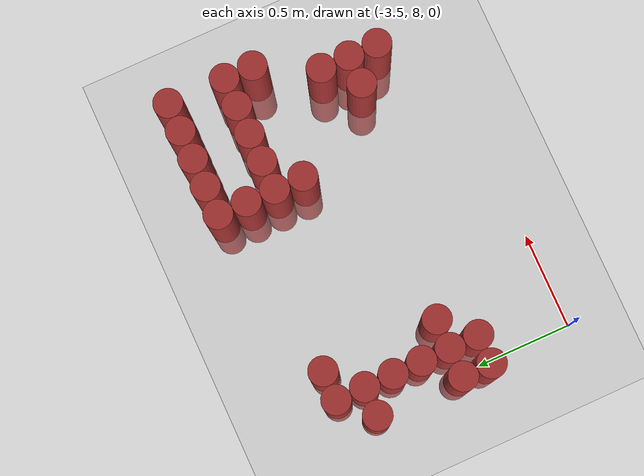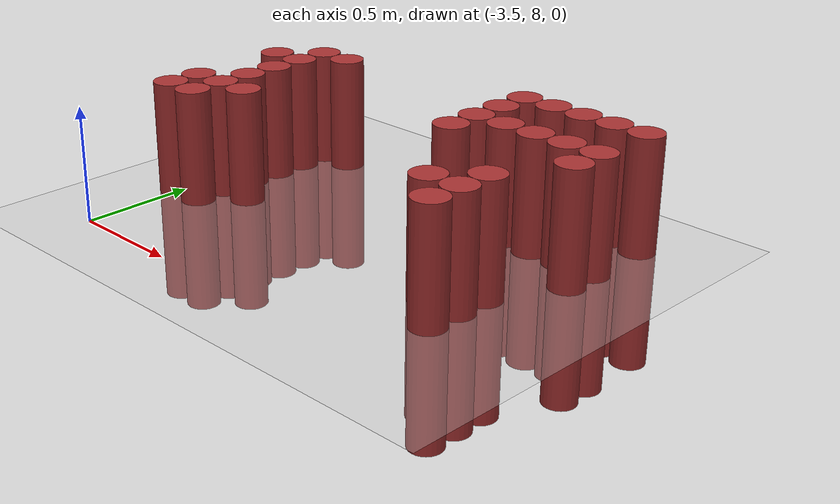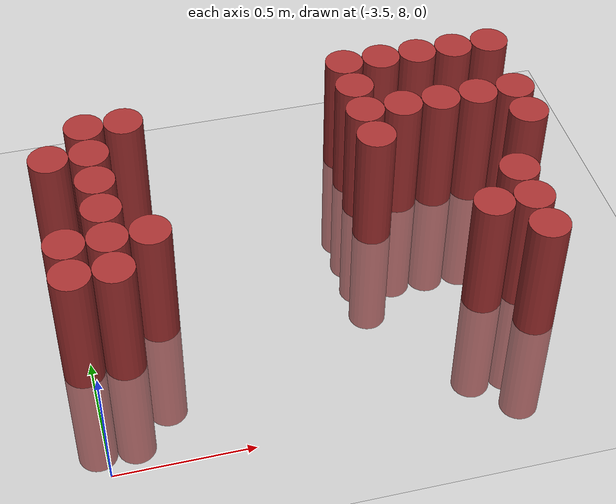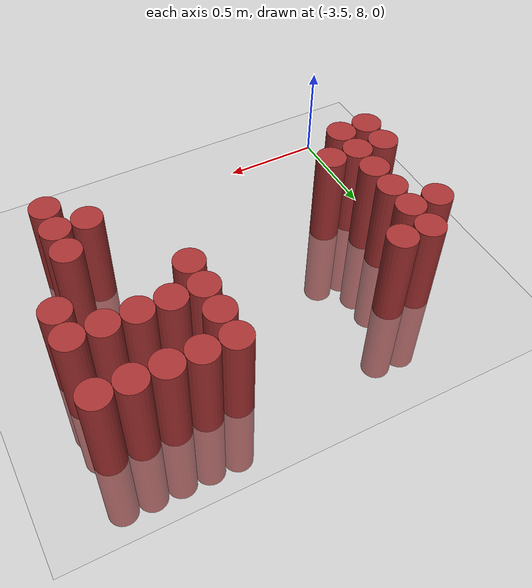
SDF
<sdf version="1.6">
 <world name="default">
  <model name="ground_plane">
   <static>1</static>
   <link name="link">
    <collision name="collision">
     <geometry><plane><normal>0 0 1</normal><size>100 100</size></plane></geometry>
     <surface><friction><ode><mu>100</mu><mu2>50</mu2></ode></friction></surface>
    </collision>
    <visual name="visual">
     <cast_shadows>0</cast_shadows>
     <geometry><plane><normal>0 0 1</normal><size>100 100</size></plane></geometry>
     <material>
      <script><uri>file://media/materials/scripts/gazebo.material</uri><name>Gazebo/Grey</name></script>
     </material>
    </visual>
   </link>
  </model>
  <model name="unit_cylinder_173">
   <static>1</static>
   <pose>-3.525000 8.475000 0.000000 0.000000 0.000000 0.000000</pose>
   <link name="link">
    <inertial>
     <mass>1</mass>
     <inertia><ixx>0.145833</ixx><ixy>0</ixy><ixz>0</ixz><iyy>0.145833</iyy><iyz>0</iyz><izz>0.125</izz></inertia>
    </inertial>
    <collision name="collision">
     <geometry><cylinder><radius>0.075000</radius><length>1</length></cylinder></geometry>
    </collision>
    <visual name="visual">
     <geometry><cylinder><radius>0.075000</radius><length>1</length></cylinder></geometry>
     <material>
      <ambient>0.648000 0.192000 0.192000 1</ambient>
      <diffuse>0.648000 0.192000 0.192000 1</diffuse>
     </material>
     <material>
      <script><name>Gazebo/Grey</name><uri>file://media/materials/scripts/gazebo.material</uri></script>
     </material>
    </visual>
   </link>
  </model>
  <model name="unit_cylinder_174">
   <static>1</static>
   <pose>-3.525000 8.625000 0.000000 0.000000 0.000000 0.000000</pose>
   <link name="link">
    <inertial>
     <mass>1</mass>
     <inertia><ixx>0.145833</ixx><ixy>0</ixy><ixz>0</ixz><iyy>0.145833</iyy><iyz>0</iyz><izz>0.125</izz></inertia>
    </inertial>
    <collision name="collision">
     <geometry><cylinder><radius>0.075000</radius><length>1</length></cylinder></geometry>
    </collision>
    <visual name="visual">
     <geometry><cylinder><radius>0.075000</radius><length>1</length></cylinder></geometry>
     <material>
      <ambient>0.648000 0.192000 0.192000 1</ambient>
      <diffuse>0.648000 0.192000 0.192000 1</diffuse>
     </material>
     <material>
      <script><name>Gazebo/Grey</name><uri>file://media/materials/scripts/gazebo.material</uri></script>
     </material>
    </visual>
   </link>
  </model>
  <model name="unit_cylinder_175">
   <static>1</static>
   <pose>-3.525000 9.075000 0.000000 0.000000 0.000000 0.000000</pose>
   <link name="link">
    <inertial>
     <mass>1</mass>
     <inertia><ixx>0.145833</ixx><ixy>0</ixy><ixz>0</ixz><iyy>0.145833</iyy><iyz>0</iyz><izz>0.125</izz></inertia>
    </inertial>
    <collision name="collision">
     <geometry><cylinder><radius>0.075000</radius><length>1</length></cylinder></geometry>
    </collision>
    <visual name="visual">
     <geometry><cylinder><radius>0.075000</radius><length>1</length></cylinder></geometry>
     <material>
      <ambient>0.648000 0.192000 0.192000 1</ambient>
      <diffuse>0.648000 0.192000 0.192000 1</diffuse>
     </material>
     <material>
      <script><name>Gazebo/Grey</name><uri>file://media/materials/scripts/gazebo.material</uri></script>
     </material>
    </visual>
   </link>
  </model>
  <model name="unit_cylinder_183">
   <static>1</static>
   <pose>-3.375000 8.475000 0.000000 0.000000 0.000000 0.000000</pose>
   <link name="link">
    <inertial>
     <mass>1</mass>
     <inertia><ixx>0.145833</ixx><ixy>0</ixy><ixz>0</ixz><iyy>0.145833</iyy><iyz>0</iyz><izz>0.125</izz></inertia>
    </inertial>
    <collision name="collision">
     <geometry><cylinder><radius>0.075000</radius><length>1</length></cylinder></geometry>
    </collision>
    <visual name="visual">
     <geometry><cylinder><radius>0.075000</radius><length>1</length></cylinder></geometry>
     <material>
      <ambient>0.648000 0.192000 0.192000 1</ambient>
      <diffuse>0.648000 0.192000 0.192000 1</diffuse>
     </material>
     <material>
      <script><name>Gazebo/Grey</name><uri>file://media/materials/scripts/gazebo.material</uri></script>
     </material>
    </visual>
   </link>
  </model>
  <model name="unit_cylinder_184">
   <static>1</static>
   <pose>-3.375000 8.625000 0.000000 0.000000 0.000000 0.000000</pose>
   <link name="link">
    <inertial>
     <mass>1</mass>
     <inertia><ixx>0.145833</ixx><ixy>0</ixy><ixz>0</ixz><iyy>0.145833</iyy><iyz>0</iyz><izz>0.125</izz></inertia>
    </inertial>
    <collision name="collision">
     <geometry><cylinder><radius>0.075000</radius><length>1</length></cylinder></geometry>
    </collision>
    <visual name="visual">
     <geometry><cylinder><radius>0.075000</radius><length>1</length></cylinder></geometry>
     <material>
      <ambient>0.648000 0.192000 0.192000 1</ambient>
      <diffuse>0.648000 0.192000 0.192000 1</diffuse>
     </material>
     <material>
      <script><name>Gazebo/Grey</name><uri>file://media/materials/scripts/gazebo.material</uri></script>
     </material>
    </visual>
   </link>
  </model>
  <model name="unit_cylinder_185">
   <static>1</static>
   <pose>-3.375000 8.775000 0.000000 0.000000 0.000000 0.000000</pose>
   <link name="link">
    <inertial>
     <mass>1</mass>
     <inertia><ixx>0.145833</ixx><ixy>0</ixy><ixz>0</ixz><iyy>0.145833</iyy><iyz>0</iyz><izz>0.125</izz></inertia>
    </inertial>
    <collision name="collision">
     <geometry><cylinder><radius>0.075000</radius><length>1</length></cylinder></geometry>
    </collision>
    <visual name="visual">
     <geometry><cylinder><radius>0.075000</radius><length>1</length></cylinder></geometry>
     <material>
      <ambient>0.648000 0.192000 0.192000 1</ambient>
      <diffuse>0.648000 0.192000 0.192000 1</diffuse>
     </material>
     <material>
      <script><name>Gazebo/Grey</name><uri>file://media/materials/scripts/gazebo.material</uri></script>
     </material>
    </visual>
   </link>
  </model>
  <model name="unit_cylinder_186">
   <static>1</static>
   <pose>-3.375000 8.925000 0.000000 0.000000 0.000000 0.000000</pose>
   <link name="link">
    <inertial>
     <mass>1</mass>
     <inertia><ixx>0.145833</ixx><ixy>0</ixy><ixz>0</ixz><iyy>0.145833</iyy><iyz>0</iyz><izz>0.125</izz></inertia>
    </inertial>
    <collision name="collision">
     <geometry><cylinder><radius>0.075000</radius><length>1</length></cylinder></geometry>
    </collision>
    <visual name="visual">
     <geometry><cylinder><radius>0.075000</radius><length>1</length></cylinder></geometry>
     <material>
      <ambient>0.648000 0.192000 0.192000 1</ambient>
      <diffuse>0.648000 0.192000 0.192000 1</diffuse>
     </material>
     <material>
      <script><name>Gazebo/Grey</name><uri>file://media/materials/scripts/gazebo.material</uri></script>
     </material>
    </visual>
   </link>
  </model>
  <model name="unit_cylinder_187">
   <static>1</static>
   <pose>-3.375000 9.075000 0.000000 0.000000 0.000000 0.000000</pose>
   <link name="link">
    <inertial>
     <mass>1</mass>
     <inertia><ixx>0.145833</ixx><ixy>0</ixy><ixz>0</ixz><iyy>0.145833</iyy><iyz>0</iyz><izz>0.125</izz></inertia>
    </inertial>
    <collision name="collision">
     <geometry><cylinder><radius>0.075000</radius><length>1</length></cylinder></geometry>
    </collision>
    <visual name="visual">
     <geometry><cylinder><radius>0.075000</radius><length>1</length></cylinder></geometry>
     <material>
      <ambient>0.648000 0.192000 0.192000 1</ambient>
      <diffuse>0.648000 0.192000 0.192000 1</diffuse>
     </material>
     <material>
      <script><name>Gazebo/Grey</name><uri>file://media/materials/scripts/gazebo.material</uri></script>
     </material>
    </visual>
   </link>
  </model>
  <model name="unit_cylinder_188">
   <static>1</static>
   <pose>-3.375000 9.225000 0.000000 0.000000 0.000000 0.000000</pose>
   <link name="link">
    <inertial>
     <mass>1</mass>
     <inertia><ixx>0.145833</ixx><ixy>0</ixy><ixz>0</ixz><iyy>0.145833</iyy><iyz>0</iyz><izz>0.125</izz></inertia>
    </inertial>
    <collision name="collision">
     <geometry><cylinder><radius>0.075000</radius><length>1</length></cylinder></geometry>
    </collision>
    <visual name="visual">
     <geometry><cylinder><radius>0.075000</radius><length>1</length></cylinder></geometry>
     <material>
      <ambient>0.648000 0.192000 0.192000 1</ambient>
      <diffuse>0.648000 0.192000 0.192000 1</diffuse>
     </material>
     <material>
      <script><name>Gazebo/Grey</name><uri>file://media/materials/scripts/gazebo.material</uri></script>
     </material>
    </visual>
   </link>
  </model>
  <model name="unit_cylinder_196">
   <static>1</static>
   <pose>-3.225000 8.625000 0.000000 0.000000 0.000000 0.000000</pose>
   <link name="link">
    <inertial>
     <mass>1</mass>
     <inertia><ixx>0.145833</ixx><ixy>0</ixy><ixz>0</ixz><iyy>0.145833</iyy><iyz>0</iyz><izz>0.125</izz></inertia>
    </inertial>
    <collision name="collision">
     <geometry><cylinder><radius>0.075000</radius><length>1</length></cylinder></geometry>
    </collision>
    <visual name="visual">
     <geometry><cylinder><radius>0.075000</radius><length>1</length></cylinder></geometry>
     <material>
      <ambient>0.648000 0.192000 0.192000 1</ambient>
      <diffuse>0.648000 0.192000 0.192000 1</diffuse>
     </material>
     <material>
      <script><name>Gazebo/Grey</name><uri>file://media/materials/scripts/gazebo.material</uri></script>
     </material>
    </visual>
   </link>
  </model>
  <model name="unit_cylinder_197">
   <static>1</static>
   <pose>-3.225000 9.225000 0.000000 0.000000 0.000000 0.000000</pose>
   <link name="link">
    <inertial>
     <mass>1</mass>
     <inertia><ixx>0.145833</ixx><ixy>0</ixy><ixz>0</ixz><iyy>0.145833</iyy><iyz>0</iyz><izz>0.125</izz></inertia>
    </inertial>
    <collision name="collision">
     <geometry><cylinder><radius>0.075000</radius><length>1</length></cylinder></geometry>
    </collision>
    <visual name="visual">
     <geometry><cylinder><radius>0.075000</radius><length>1</length></cylinder></geometry>
     <material>
      <ambient>0.648000 0.192000 0.192000 1</ambient>
      <diffuse>0.648000 0.192000 0.192000 1</diffuse>
     </material>
     <material>
      <script><name>Gazebo/Grey</name><uri>file://media/materials/scripts/gazebo.material</uri></script>
     </material>
    </visual>
   </link>
  </model>
  <model name="unit_cylinder_232">
   <static>1</static>
   <pose>-2.325000 8.925000 0.000000 0.000000 0.000000 0.000000</pose>
   <link name="link">
    <inertial>
     <mass>1</mass>
     <inertia><ixx>0.145833</ixx><ixy>0</ixy><ixz>0</ixz><iyy>0.145833</iyy><iyz>0</iyz><izz>0.125</izz></inertia>
    </inertial>
    <collision name="collision">
     <geometry><cylinder><radius>0.075000</radius><length>1</length></cylinder></geometry>
    </collision>
    <visual name="visual">
     <geometry><cylinder><radius>0.075000</radius><length>1</length></cylinder></geometry>
     <material>
      <ambient>0.648000 0.192000 0.192000 1</ambient>
      <diffuse>0.648000 0.192000 0.192000 1</diffuse>
     </material>
     <material>
      <script><name>Gazebo/Grey</name><uri>file://media/materials/scripts/gazebo.material</uri></script>
     </material>
    </visual>
   </link>
  </model>
  <model name="unit_cylinder_233">
   <static>1</static>
   <pose>-2.325000 9.075000 0.000000 0.000000 0.000000 0.000000</pose>
   <link name="link">
    <inertial>
     <mass>1</mass>
     <inertia><ixx>0.145833</ixx><ixy>0</ixy><ixz>0</ixz><iyy>0.145833</iyy><iyz>0</iyz><izz>0.125</izz></inertia>
    </inertial>
    <collision name="collision">
     <geometry><cylinder><radius>0.075000</radius><length>1</length></cylinder></geometry>
    </collision>
    <visual name="visual">
     <geometry><cylinder><radius>0.075000</radius><length>1</length></cylinder></geometry>
     <material>
      <ambient>0.648000 0.192000 0.192000 1</ambient>
      <diffuse>0.648000 0.192000 0.192000 1</diffuse>
     </material>
     <material>
      <script><name>Gazebo/Grey</name><uri>file://media/materials/scripts/gazebo.material</uri></script>
     </material>
    </visual>
   </link>
  </model>
  <model name="unit_cylinder_234">
   <static>1</static>
   <pose>-2.325000 9.225000 0.000000 0.000000 0.000000 0.000000</pose>
   <link name="link">
    <inertial>
     <mass>1</mass>
     <inertia><ixx>0.145833</ixx><ixy>0</ixy><ixz>0</ixz><iyy>0.145833</iyy><iyz>0</iyz><izz>0.125</izz></inertia>
    </inertial>
    <collision name="collision">
     <geometry><cylinder><radius>0.075000</radius><length>1</length></cylinder></geometry>
    </collision>
    <visual name="visual">
     <geometry><cylinder><radius>0.075000</radius><length>1</length></cylinder></geometry>
     <material>
      <ambient>0.648000 0.192000 0.192000 1</ambient>
      <diffuse>0.648000 0.192000 0.192000 1</diffuse>
     </material>
     <material>
      <script><name>Gazebo/Grey</name><uri>file://media/materials/scripts/gazebo.material</uri></script>
     </material>
    </visual>
   </link>
  </model>
  <model name="unit_cylinder_235">
   <static>1</static>
   <pose>-2.325000 9.375000 0.000000 0.000000 0.000000 0.000000</pose>
   <link name="link">
    <inertial>
     <mass>1</mass>
     <inertia><ixx>0.145833</ixx><ixy>0</ixy><ixz>0</ixz><iyy>0.145833</iyy><iyz>0</iyz><izz>0.125</izz></inertia>
    </inertial>
    <collision name="collision">
     <geometry><cylinder><radius>0.075000</radius><length>1</length></cylinder></geometry>
    </collision>
    <visual name="visual">
     <geometry><cylinder><radius>0.075000</radius><length>1</length></cylinder></geometry>
     <material>
      <ambient>0.648000 0.192000 0.192000 1</ambient>
      <diffuse>0.648000 0.192000 0.192000 1</diffuse>
     </material>
     <material>
      <script><name>Gazebo/Grey</name><uri>file://media/materials/scripts/gazebo.material</uri></script>
     </material>
    </visual>
   </link>
  </model>
  <model name="unit_cylinder_237">
   <static>1</static>
   <pose>-2.175000 9.075000 0.000000 0.000000 0.000000 0.000000</pose>
   <link name="link">
    <inertial>
     <mass>1</mass>
     <inertia><ixx>0.145833</ixx><ixy>0</ixy><ixz>0</ixz><iyy>0.145833</iyy><iyz>0</iyz><izz>0.125</izz></inertia>
    </inertial>
    <collision name="collision">
     <geometry><cylinder><radius>0.075000</radius><length>1</length></cylinder></geometry>
    </collision>
    <visual name="visual">
     <geometry><cylinder><radius>0.075000</radius><length>1</length></cylinder></geometry>
     <material>
      <ambient>0.648000 0.192000 0.192000 1</ambient>
      <diffuse>0.648000 0.192000 0.192000 1</diffuse>
     </material>
     <material>
      <script><name>Gazebo/Grey</name><uri>file://media/materials/scripts/gazebo.material</uri></script>
     </material>
    </visual>
   </link>
  </model>
  <model name="unit_cylinder_238">
   <static>1</static>
   <pose>-2.175000 9.375000 0.000000 0.000000 0.000000 0.000000</pose>
   <link name="link">
    <inertial>
     <mass>1</mass>
     <inertia><ixx>0.145833</ixx><ixy>0</ixy><ixz>0</ixz><iyy>0.145833</iyy><iyz>0</iyz><izz>0.125</izz></inertia>
    </inertial>
    <collision name="collision">
     <geometry><cylinder><radius>0.075000</radius><length>1</length></cylinder></geometry>
    </collision>
    <visual name="visual">
     <geometry><cylinder><radius>0.075000</radius><length>1</length></cylinder></geometry>
     <material>
      <ambient>0.648000 0.192000 0.192000 1</ambient>
      <diffuse>0.648000 0.192000 0.192000 1</diffuse>
     </material>
     <material>
      <script><name>Gazebo/Grey</name><uri>file://media/materials/scripts/gazebo.material</uri></script>
     </material>
    </visual>
   </link>
  </model>
  <model name="unit_cylinder_239">
   <static>1</static>
   <pose>-2.025000 8.475000 0.000000 0.000000 0.000000 0.000000</pose>
   <link name="link">
    <inertial>
     <mass>1</mass>
     <inertia><ixx>0.145833</ixx><ixy>0</ixy><ixz>0</ixz><iyy>0.145833</iyy><iyz>0</iyz><izz>0.125</izz></inertia>
    </inertial>
    <collision name="collision">
     <geometry><cylinder><radius>0.075000</radius><length>1</length></cylinder></geometry>
    </collision>
    <visual name="visual">
     <geometry><cylinder><radius>0.075000</radius><length>1</length></cylinder></geometry>
     <material>
      <ambient>0.648000 0.192000 0.192000 1</ambient>
      <diffuse>0.648000 0.192000 0.192000 1</diffuse>
     </material>
     <material>
      <script><name>Gazebo/Grey</name><uri>file://media/materials/scripts/gazebo.material</uri></script>
     </material>
    </visual>
   </link>
  </model>
  <model name="unit_cylinder_240">
   <static>1</static>
   <pose>-2.025000 9.075000 0.000000 0.000000 0.000000 0.000000</pose>
   <link name="link">
    <inertial>
     <mass>1</mass>
     <inertia><ixx>0.145833</ixx><ixy>0</ixy><ixz>0</ixz><iyy>0.145833</iyy><iyz>0</iyz><izz>0.125</izz></inertia>
    </inertial>
    <collision name="collision">
     <geometry><cylinder><radius>0.075000</radius><length>1</length></cylinder></geometry>
    </collision>
    <visual name="visual">
     <geometry><cylinder><radius>0.075000</radius><length>1</length></cylinder></geometry>
     <material>
      <ambient>0.648000 0.192000 0.192000 1</ambient>
      <diffuse>0.648000 0.192000 0.192000 1</diffuse>
     </material>
     <material>
      <script><name>Gazebo/Grey</name><uri>file://media/materials/scripts/gazebo.material</uri></script>
     </material>
    </visual>
   </link>
  </model>
  <model name="unit_cylinder_241">
   <static>1</static>
   <pose>-2.025000 9.375000 0.000000 0.000000 0.000000 0.000000</pose>
   <link name="link">
    <inertial>
     <mass>1</mass>
     <inertia><ixx>0.145833</ixx><ixy>0</ixy><ixz>0</ixz><iyy>0.145833</iyy><iyz>0</iyz><izz>0.125</izz></inertia>
    </inertial>
    <collision name="collision">
     <geometry><cylinder><radius>0.075000</radius><length>1</length></cylinder></geometry>
    </collision>
    <visual name="visual">
     <geometry><cylinder><radius>0.075000</radius><length>1</length></cylinder></geometry>
     <material>
      <ambient>0.648000 0.192000 0.192000 1</ambient>
      <diffuse>0.648000 0.192000 0.192000 1</diffuse>
     </material>
     <material>
      <script><name>Gazebo/Grey</name><uri>file://media/materials/scripts/gazebo.material</uri></script>
     </material>
    </visual>
   </link>
  </model>
  <model name="unit_cylinder_242">
   <static>1</static>
   <pose>-1.875000 8.325000 0.000000 0.000000 0.000000 0.000000</pose>
   <link name="link">
    <inertial>
     <mass>1</mass>
     <inertia><ixx>0.145833</ixx><ixy>0</ixy><ixz>0</ixz><iyy>0.145833</iyy><iyz>0</iyz><izz>0.125</izz></inertia>
    </inertial>
    <collision name="collision">
     <geometry><cylinder><radius>0.075000</radius><length>1</length></cylinder></geometry>
    </collision>
    <visual name="visual">
     <geometry><cylinder><radius>0.075000</radius><length>1</length></cylinder></geometry>
     <material>
      <ambient>0.648000 0.192000 0.192000 1</ambient>
      <diffuse>0.648000 0.192000 0.192000 1</diffuse>
     </material>
     <material>
      <script><name>Gazebo/Grey</name><uri>file://media/materials/scripts/gazebo.material</uri></script>
     </material>
    </visual>
   </link>
  </model>
  <model name="unit_cylinder_243">
   <static>1</static>
   <pose>-1.875000 8.475000 0.000000 0.000000 0.000000 0.000000</pose>
   <link name="link">
    <inertial>
     <mass>1</mass>
     <inertia><ixx>0.145833</ixx><ixy>0</ixy><ixz>0</ixz><iyy>0.145833</iyy><iyz>0</iyz><izz>0.125</izz></inertia>
    </inertial>
    <collision name="collision">
     <geometry><cylinder><radius>0.075000</radius><length>1</length></cylinder></geometry>
    </collision>
    <visual name="visual">
     <geometry><cylinder><radius>0.075000</radius><length>1</length></cylinder></geometry>
     <material>
      <ambient>0.648000 0.192000 0.192000 1</ambient>
      <diffuse>0.648000 0.192000 0.192000 1</diffuse>
     </material>
     <material>
      <script><name>Gazebo/Grey</name><uri>file://media/materials/scripts/gazebo.material</uri></script>
     </material>
    </visual>
   </link>
  </model>
  <model name="unit_cylinder_244">
   <static>1</static>
   <pose>-1.875000 8.625000 0.000000 0.000000 0.000000 0.000000</pose>
   <link name="link">
    <inertial>
     <mass>1</mass>
     <inertia><ixx>0.145833</ixx><ixy>0</ixy><ixz>0</ixz><iyy>0.145833</iyy><iyz>0</iyz><izz>0.125</izz></inertia>
    </inertial>
    <collision name="collision">
     <geometry><cylinder><radius>0.075000</radius><length>1</length></cylinder></geometry>
    </collision>
    <visual name="visual">
     <geometry><cylinder><radius>0.075000</radius><length>1</length></cylinder></geometry>
     <material>
      <ambient>0.648000 0.192000 0.192000 1</ambient>
      <diffuse>0.648000 0.192000 0.192000 1</diffuse>
     </material>
     <material>
      <script><name>Gazebo/Grey</name><uri>file://media/materials/scripts/gazebo.material</uri></script>
     </material>
    </visual>
   </link>
  </model>
  <model name="unit_cylinder_245">
   <static>1</static>
   <pose>-1.875000 9.075000 0.000000 0.000000 0.000000 0.000000</pose>
   <link name="link">
    <inertial>
     <mass>1</mass>
     <inertia><ixx>0.145833</ixx><ixy>0</ixy><ixz>0</ixz><iyy>0.145833</iyy><iyz>0</iyz><izz>0.125</izz></inertia>
    </inertial>
    <collision name="collision">
     <geometry><cylinder><radius>0.075000</radius><length>1</length></cylinder></geometry>
    </collision>
    <visual name="visual">
     <geometry><cylinder><radius>0.075000</radius><length>1</length></cylinder></geometry>
     <material>
      <ambient>0.648000 0.192000 0.192000 1</ambient>
      <diffuse>0.648000 0.192000 0.192000 1</diffuse>
     </material>
     <material>
      <script><name>Gazebo/Grey</name><uri>file://media/materials/scripts/gazebo.material</uri></script>
     </material>
    </visual>
   </link>
  </model>
  <model name="unit_cylinder_246">
   <static>1</static>
   <pose>-1.875000 9.375000 0.000000 0.000000 0.000000 0.000000</pose>
   <link name="link">
    <inertial>
     <mass>1</mass>
     <inertia><ixx>0.145833</ixx><ixy>0</ixy><ixz>0</ixz><iyy>0.145833</iyy><iyz>0</iyz><izz>0.125</izz></inertia>
    </inertial>
    <collision name="collision">
     <geometry><cylinder><radius>0.075000</radius><length>1</length></cylinder></geometry>
    </collision>
    <visual name="visual">
     <geometry><cylinder><radius>0.075000</radius><length>1</length></cylinder></geometry>
     <material>
      <ambient>0.648000 0.192000 0.192000 1</ambient>
      <diffuse>0.648000 0.192000 0.192000 1</diffuse>
     </material>
     <material>
      <script><name>Gazebo/Grey</name><uri>file://media/materials/scripts/gazebo.material</uri></script>
     </material>
    </visual>
   </link>
  </model>
  <model name="unit_cylinder_247">
   <static>1</static>
   <pose>-1.725000 8.925000 0.000000 0.000000 0.000000 0.000000</pose>
   <link name="link">
    <inertial>
     <mass>1</mass>
     <inertia><ixx>0.145833</ixx><ixy>0</ixy><ixz>0</ixz><iyy>0.145833</iyy><iyz>0</iyz><izz>0.125</izz></inertia>
    </inertial>
    <collision name="collision">
     <geometry><cylinder><radius>0.075000</radius><length>1</length></cylinder></geometry>
    </collision>
    <visual name="visual">
     <geometry><cylinder><radius>0.075000</radius><length>1</length></cylinder></geometry>
     <material>
      <ambient>0.648000 0.192000 0.192000 1</ambient>
      <diffuse>0.648000 0.192000 0.192000 1</diffuse>
     </material>
     <material>
      <script><name>Gazebo/Grey</name><uri>file://media/materials/scripts/gazebo.material</uri></script>
     </material>
    </visual>
   </link>
  </model>
  <model name="unit_cylinder_248">
   <static>1</static>
   <pose>-1.725000 9.075000 0.000000 0.000000 0.000000 0.000000</pose>
   <link name="link">
    <inertial>
     <mass>1</mass>
     <inertia><ixx>0.145833</ixx><ixy>0</ixy><ixz>0</ixz><iyy>0.145833</iyy><iyz>0</iyz><izz>0.125</izz></inertia>
    </inertial>
    <collision name="collision">
     <geometry><cylinder><radius>0.075000</radius><length>1</length></cylinder></geometry>
    </collision>
    <visual name="visual">
     <geometry><cylinder><radius>0.075000</radius><length>1</length></cylinder></geometry>
     <material>
      <ambient>0.648000 0.192000 0.192000 1</ambient>
      <diffuse>0.648000 0.192000 0.192000 1</diffuse>
     </material>
     <material>
      <script><name>Gazebo/Grey</name><uri>file://media/materials/scripts/gazebo.material</uri></script>
     </material>
    </visual>
   </link>
  </model>
  <model name="unit_cylinder_249">
   <static>1</static>
   <pose>-1.725000 9.375000 0.000000 0.000000 0.000000 0.000000</pose>
   <link name="link">
    <inertial>
     <mass>1</mass>
     <inertia><ixx>0.145833</ixx><ixy>0</ixy><ixz>0</ixz><iyy>0.145833</iyy><iyz>0</iyz><izz>0.125</izz></inertia>
    </inertial>
    <collision name="collision">
     <geometry><cylinder><radius>0.075000</radius><length>1</length></cylinder></geometry>
    </collision>
    <visual name="visual">
     <geometry><cylinder><radius>0.075000</radius><length>1</length></cylinder></geometry>
     <material>
      <ambient>0.648000 0.192000 0.192000 1</ambient>
      <diffuse>0.648000 0.192000 0.192000 1</diffuse>
     </material>
     <material>
      <script><name>Gazebo/Grey</name><uri>file://media/materials/scripts/gazebo.material</uri></script>
     </material>
    </visual>
   </link>
  </model>
 </world>
</sdf>
